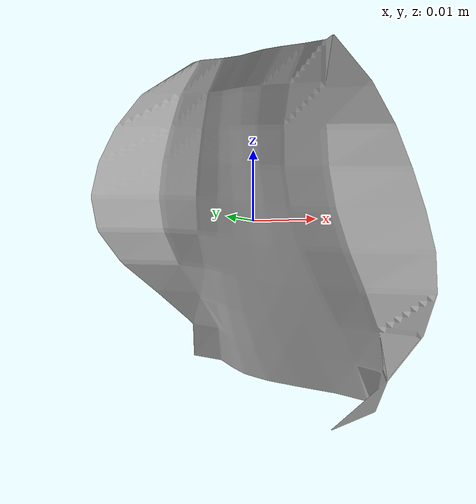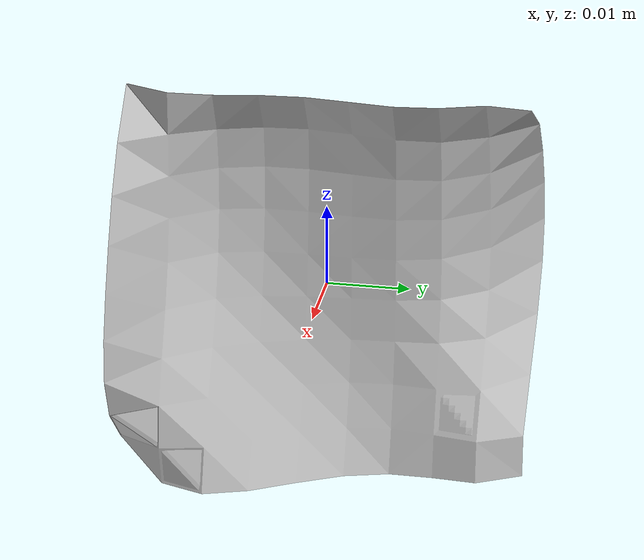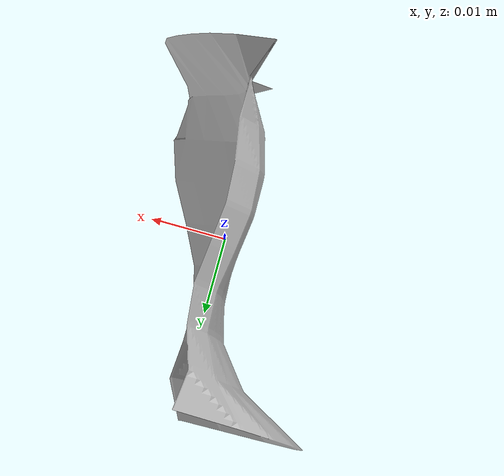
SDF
<?xml version='1.0'?>
<sdf version='1.6'>
  <model name="ID4_130">
  <static>true</static>
    <link name="link">
      <collision name="collision">
        <geometry>
          <mesh>
            <uri>model://test/meshes/ID4_130.dae</uri>
          </mesh>
        </geometry>
      </collision>

      <visual name='visual'>
        <geometry>
          <mesh>
            <uri>model://ID4_130/meshes/ID4_130.dae</uri>
          </mesh>
        </geometry>
      </visual>
    </link>

    </model>
  </sdf>
